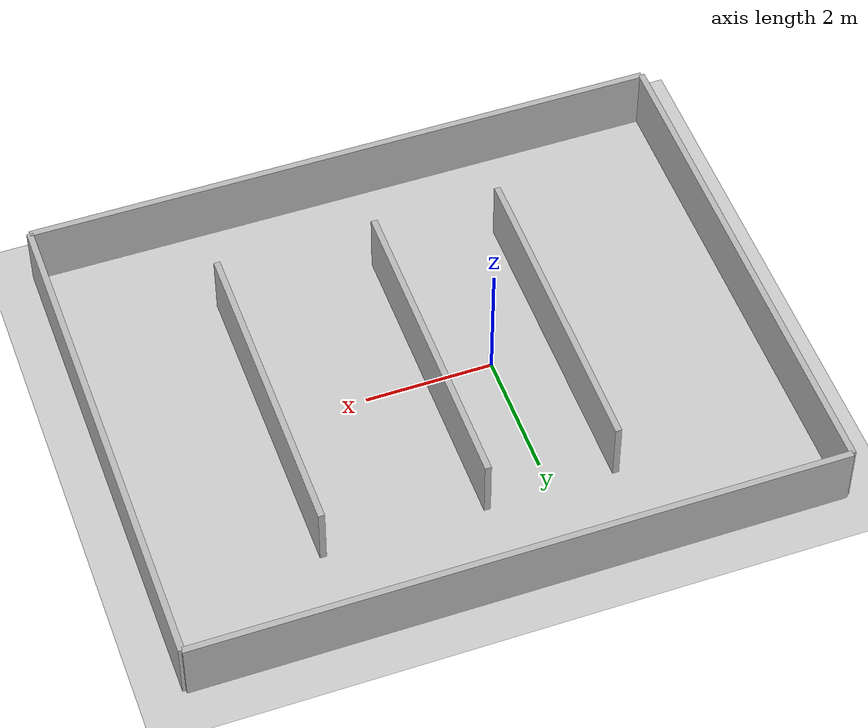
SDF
<?xml version="1.0"?>
<sdf version="1.4">
  <world name="default">
    <include>
      <uri>model://sun</uri>
    </include>
    <include>
      <uri>model://ground_plane</uri>
    </include>

    <physics type="ode">
      <real_time_update_rate>1000.0</real_time_update_rate>
      <max_step_size>0.001</max_step_size>
      <real_time_factor>1</real_time_factor>
    </physics>

    <!-- Tường ngoài: cạnh sau (xa) -->
    <model name="wall_back">
      <static>true</static>
      <pose>1 4 0.5 0 0 0</pose>
      <link name="link">
        <collision name="collision">
          <geometry><box><size>10 0.1 1</size></box></geometry>
        </collision>
        <visual name="visual">
          <geometry><box><size>10 0.1 1</size></box></geometry>
        </visual>
      </link>
    </model>

    <!-- Tường ngoài: cạnh trước (gần) -->
    <model name="wall_front">
      <static>true</static>
      <pose>1 -4 0.5 0 0 0</pose>
      <link name="link">
        <collision name="collision">
          <geometry><box><size>10 0.1 1</size></box></geometry>
        </collision>
        <visual name="visual">
          <geometry><box><size>10 0.1 1</size></box></geometry>
        </visual>
      </link>
    </model>

    <!-- 4 vách ngăn bên trong, dài tăng dần, gắn từ tường sau thò ra -->
    <model name="partition_1">
      <static>true</static>
      <pose>-4 0 0.5 0 0 0</pose>
      <link name="link">
        <collision name="collision"><geometry><box><size>0.1 8 1</size></box></geometry></collision>
        <visual name="visual"><geometry><box><size>0.1 8 1</size></box></geometry></visual>
      </link>
    </model>

    <model name="partition_2">
      <static>true</static>
      <pose>-1 0 0.5 0 0 0</pose>
      <link name="link">
        <collision name="collision"><geometry><box><size>0.1 5 1</size></box></geometry></collision>
        <visual name="visual"><geometry><box><size>0.1 5 1</size></box></geometry></visual>
      </link>
    </model>

    <model name="partition_3">
      <static>true</static>
      <pose>1 0 0.5 0 0 0</pose>
      <link name="link">
        <collision name="collision"><geometry><box><size>0.1 5 1</size></box></geometry></collision>
        <visual name="visual"><geometry><box><size>0.1 5 1</size></box></geometry></visual>
      </link>
    </model>

    <model name="partition_5">
      <static>true</static>
      <pose>3.5 0 0.5 0 0 0</pose>
      <link name="link">
        <collision name="collision"><geometry><box><size>0.1 5 1</size></box></geometry></collision>
        <visual name="visual"><geometry><box><size>0.1 5 1</size></box></geometry></visual>
      </link>
    </model>

    <model name="partition_4">
      <static>true</static>
      <pose>6 0 0.5 0 0 0</pose>
      <link name="link">
        <collision name="collision"><geometry><box><size>0.1 8 1</size></box></geometry></collision>
        <visual name="visual"><geometry><box><size>0.1 8 1</size></box></geometry></visual>
      </link>
    </model>

    <scene>
      <shadows>false</shadows>
    </scene>

    <gui>
      <camera name="user_camera">
        <pose>0 0 10 0 1.5708 0</pose>
      </camera>
    </gui>
  </world>
</sdf>
